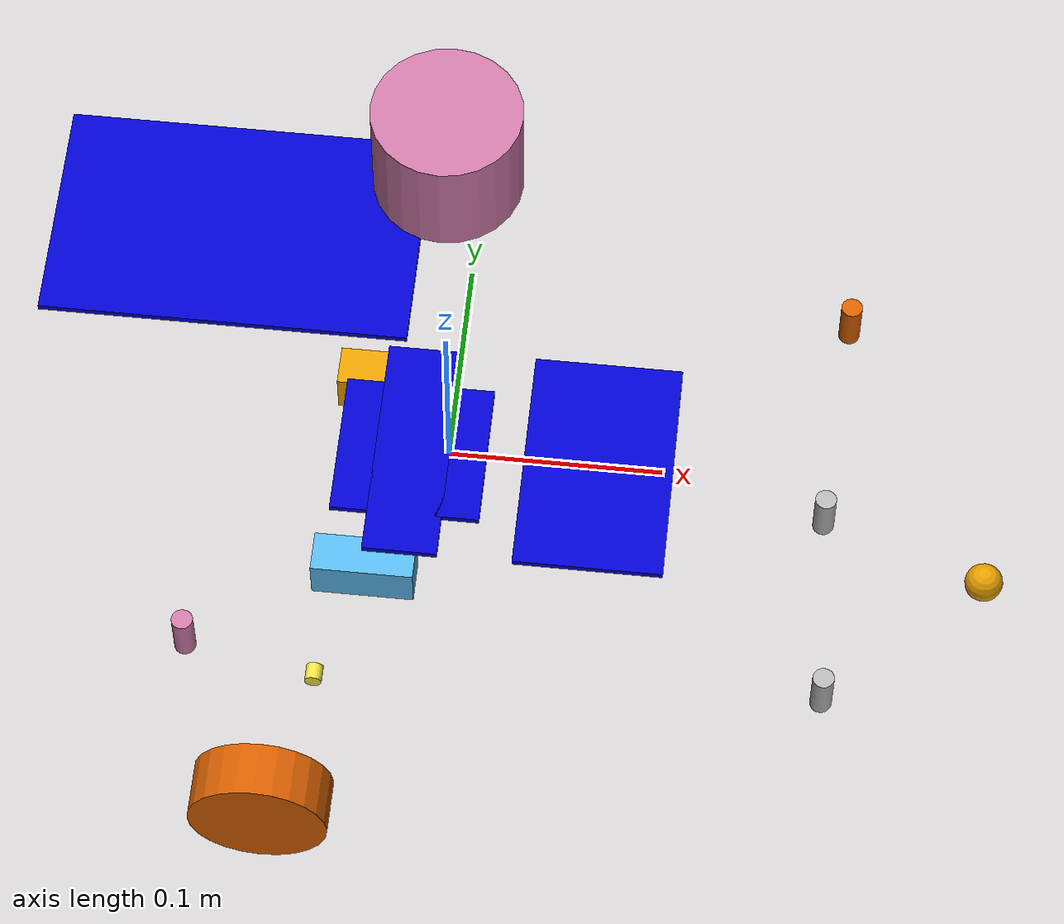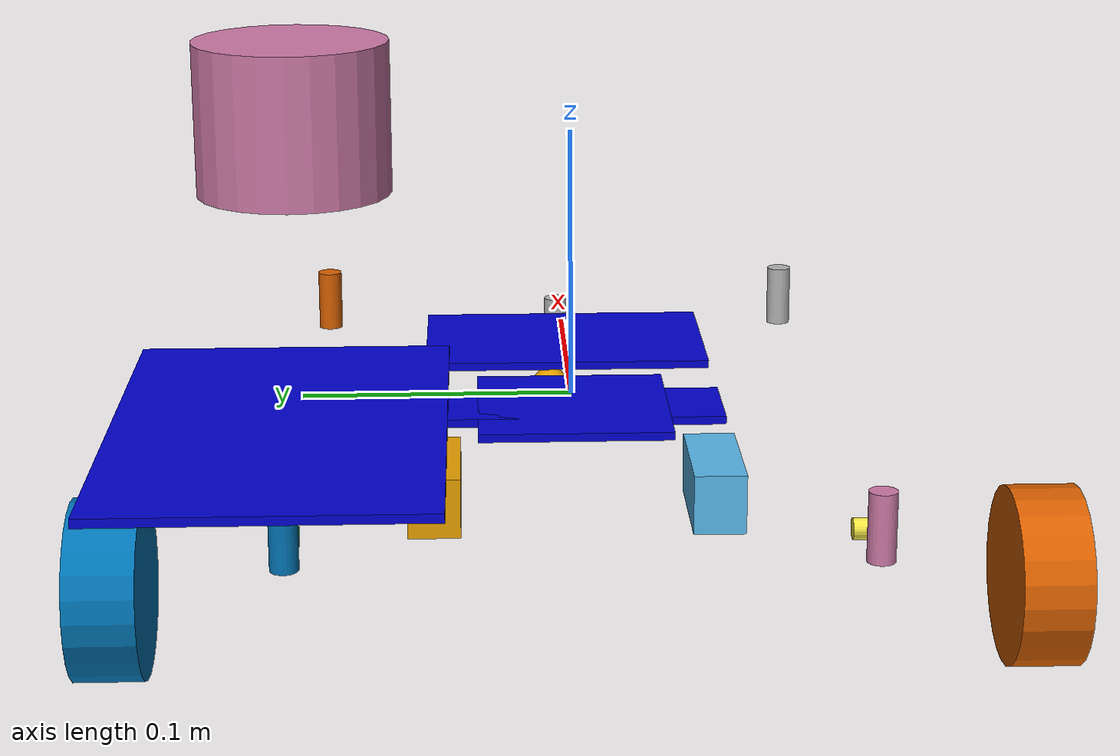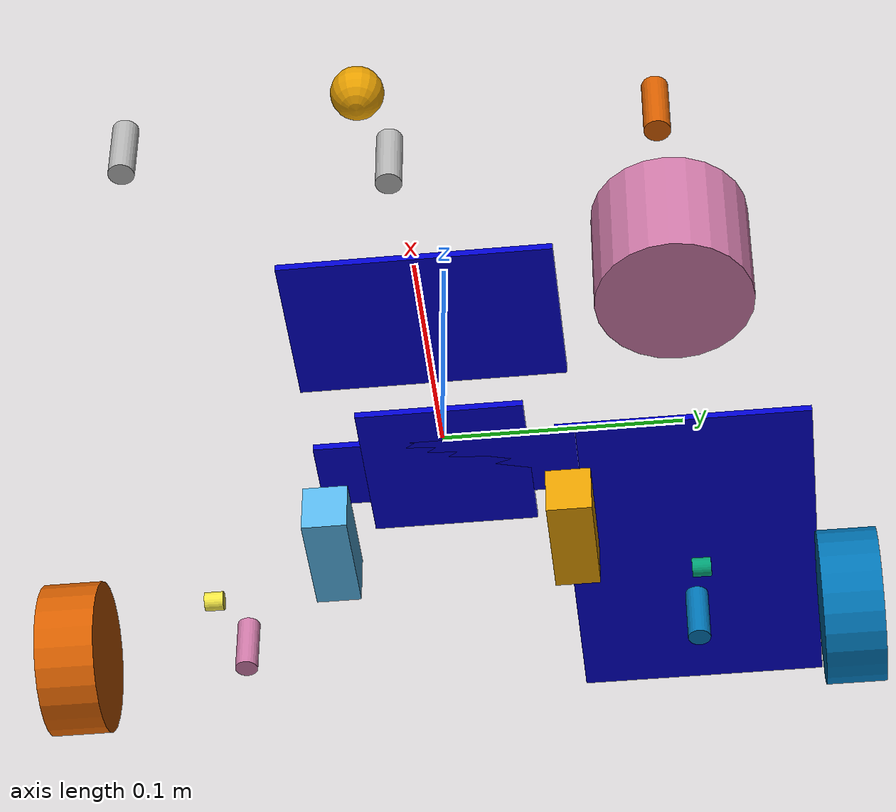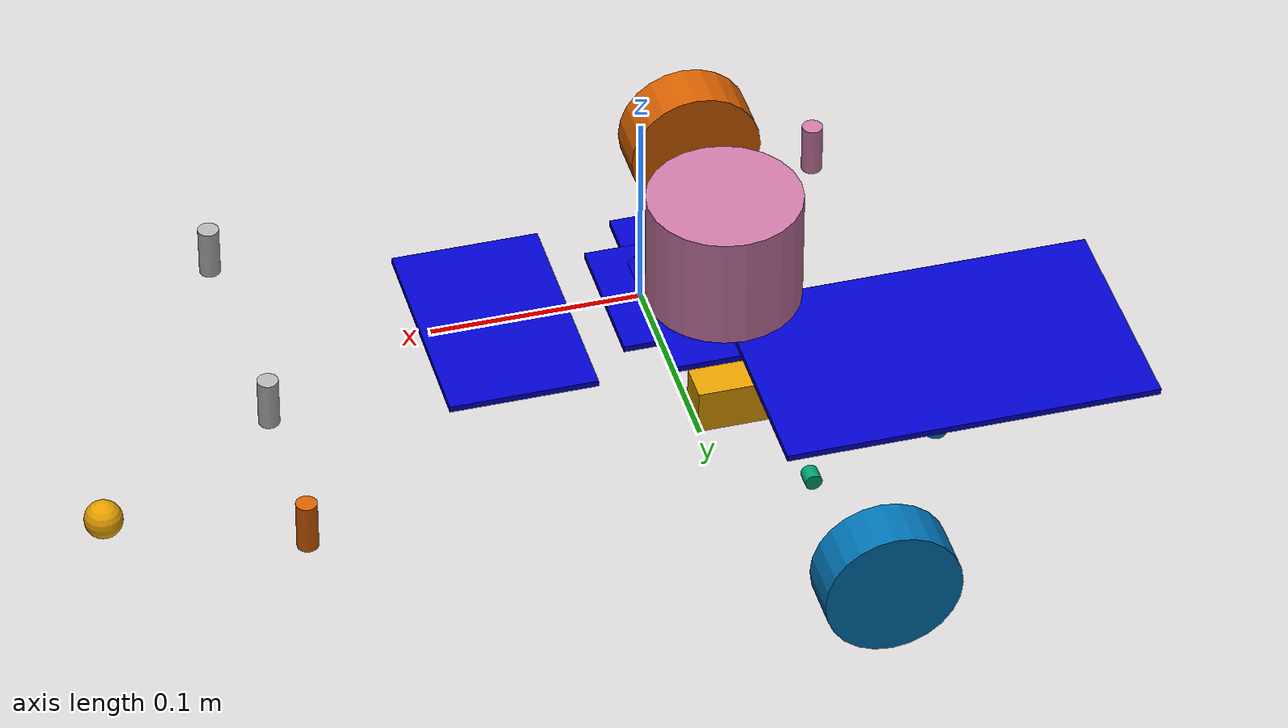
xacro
<?xml version="1.0"?>
<robot name="robot">
<material name="blue">
    <color rgba="0 0 0.8 1"/>
  </material>

  <material name="white">
    <color rgba="1 1 1 1"/>
  </material>

  <link name="bottom3">
    <visual>
      <geometry>
        <box size="0.07 0.110 0.003"/>
      </geometry>
      <material name="blue"/>
      <origin rpy="0 0 0" xyz="0.0525 0 0"/>
    </visual>
     <collision>
      <geometry>
        <box size="0.08 0.120 0.003"/>
      </geometry>
    </collision>
  </link>

  <joint name="bottom3 to base_link" type="fixed">
    <parent link="base_link"/>
    <child link="bottom3"/>
    <origin xyz="0.0175 0 0"/>
  </joint>

<link name="base_link">
    <visual>
      <geometry>
        <box size="0.07 0.07 0.003"/>
      </geometry>
      <material name="blue"/>
      <origin rpy="0 0 0" xyz="-0.0175 0 0"/>
    </visual>
     <collision>
      <geometry>
        <box size="0.08 0.07 0.003"/>
      </geometry>
    </collision>
  </link>

<link name="bottom1">
    <visual>
      <geometry>
        <box size="0.035 0.110 0.003"/>
      </geometry>
      <material name="blue"/>
      <origin rpy="0 0 0" xyz="-0.07 0 0"/>
    </visual>
    <collision>
      <geometry>
        <box size="0.045 0.120 0.003"/>
      </geometry>
    </collision>
  </link>

  <joint name="bottom1 to base_link" type="fixed">
    <parent link="base_link"/>
    <child link="bottom1"/>
    <origin xyz="0.0525 0 0"/>
  </joint>

  <link name="top">
    <visual>
      <geometry>
        <box size="0.175 0.110 0.003"/>
      </geometry>
      <material name="blue"/>
      <origin rpy="0 0 0" xyz="0 0 0.025"/>
    </visual>
  </link>

  <joint name="top joint" type="fixed">
    <parent link="pillar1"/>
    <child link="top"/>
    <origin xyz="-0.0825 0.05 0.025"/>
  </joint>

  <link name="pillar1">
    <visual>
      <geometry>
        <cylinder length="0.025" radius="0.005"/>
      </geometry>
      <origin rpy="0 0 0" xyz="-0.0825 0.05 0.0125"/>
    </visual>
  </link>

  <joint name="pillar1 joint" type="fixed">
    <parent link="bottom1"/>
    <child link="pillar1"/>
    <origin xyz="-0.0825 0.05 -0.025"/>
  </joint>

    <link name="pillar2">
    <visual>
      <geometry>
        <cylinder length="0.025" radius="0.005"/>
      </geometry>
      <origin rpy="0 0 0" xyz="0.0825 0.05 0.0125"/>
    </visual>
  </link>

  <joint name="pillar2 joint" type="fixed">
    <parent link="bottom3"/>
    <child link="pillar2"/>
    <origin xyz="0.0825 0.05 -0.025"/>
  </joint>

    <link name="pillar3">
    <visual>
      <geometry>
        <cylinder length="0.025" radius="0.005"/>
      </geometry>
      <origin rpy="0 0 0" xyz="-0.0825 -0.05 0.0125"/>
    </visual>
  </link>

  <joint name="pillar3 joint" type="fixed">
    <parent link="bottom1"/>
    <child link="pillar3"/>
    <origin xyz="-0.0825 -0.05 -0.025"/>
  </joint>

    <link name="pillar4">
    <visual>
      <geometry>
        <cylinder length="0.025" radius="0.005"/>
      </geometry>
      <origin rpy="0 0 0" xyz="0.0825 -0.05 0.0125"/>
    </visual>
  </link>

  <joint name="pillar4 joint" type="fixed">
    <parent link="bottom3"/>
    <child link="pillar4"/>
    <origin xyz="0.0825 -0.05 -0.025"/>
  </joint>

   <link name="right motor">
    <visual>
      <geometry>
        <box size="0.048 0.019 0.022"/>
      </geometry>
      <origin rpy="0 0 0" xyz="-0.0175 0.0255 -0.012"/>
    </visual>
  </link>

   <joint name="right motor joint" type="fixed">
    <parent link="base_link"/>
    <child link="right motor"/>
    <origin xyz="-0.0175 0.0255 -0.012"/>
  </joint>

     <link name="left motor">
    <visual>
      <geometry>
        <box size="0.048 0.019 0.022"/>
      </geometry>
      <origin rpy="0 0 0" xyz="-0.0175 -0.0255 -0.012"/>
    </visual>
  </link>

   <joint name="left motor joint" type="fixed">
    <parent link="base_link"/>
    <child link="left motor"/>
    <origin xyz="-0.0175 -0.0255 -0.012"/>
  </joint>

    <link name="right shaft">
    <visual>
      <geometry>
        <cylinder length="0.008" radius="0.004"/>
      </geometry>
      <origin rpy="1.57079 0 0" xyz="-0.0175 0.039 -0.012"/>
    </visual>
  </link>

   <joint name="right shaft joint" type="fixed">
    <parent link="right motor"/>
    <child link="right shaft"/>
    <origin xyz="-0.0175 0.039 -0.012"/>
  </joint>

    <link name="left shaft">
    <visual>
      <geometry>
        <cylinder length="0.008" radius="0.004"/>
      </geometry>
      <origin rpy="-1.57079 0 0" xyz="-0.0175 -0.039 -0.012"/>
    </visual>
  </link>

   <joint name="left shaft joint" type="fixed">
    <parent link="left motor"/>
    <child link="left shaft"/>
    <origin xyz="-0.0175 -0.039 -0.012"/>
  </joint>

    <link name="right wheel">
    <visual>
      <geometry>
        <cylinder length="0.025" radius="0.0325"/>
      </geometry>
            <origin rpy="1.57079 0 0" xyz="-0.0175 0.05 -0.012"/>
    </visual>
  </link>

    <joint name="right_wheel_joint" type="continuous">
    <parent link="right shaft"/>
    <child link="right wheel"/>
    <axis xyz="1 0 0"/>
    <origin xyz="-0.0175 0.05 -0.012"/>
  </joint>

      <link name="left wheel">
    <visual>
      <geometry>
        <cylinder length="0.025" radius="0.0325"/>
      </geometry>
            <origin rpy="1.57079 0 0" xyz="-0.0175 -0.05 -0.012"/>
    </visual>
  </link>

    <joint name="left_wheel_joint" type="continuous">
    <parent link="left shaft"/>
    <child link="left wheel"/>
    <axis xyz="1 0 0"/>
    <origin xyz="-0.0175 -0.05 -0.012"/>
  </joint>

  <link name="lidar">
    <visual>
      <geometry>
        <cylinder length="0.055" radius="0.03515"/>
      </geometry>
      <origin rpy="0 0 0" xyz="0.051 0 0.054"/>
    </visual>
  </link>

    <joint name="lidar joint" type="fixed">
    <parent link="top"/>
    <child link="lidar"/>
    <origin xyz="0.051 0 0.054"/>
  </joint>

  <link name="ball pillar">
    <visual>
      <geometry>
        <cylinder length="0.025" radius="0.005"/>
      </geometry>
      <origin rpy="0 0 0" xyz="0.08 0 -0.012"/>
    </visual>
  </link>

  <joint name="ball pillar joint" type="fixed">
    <parent link="bottom3"/>
    <child link="ball pillar"/>
    <origin xyz="0.08 0 -0.012"/>
  </joint>

  <link name="ball">
    <visual>
      <geometry>
        <sphere radius="0.00925"/>
      </geometry>
      <origin rpy="0 0 0" xyz="0.08 0 -0.033"/>
    </visual>
  </link>

  <joint name="ball joint" type="fixed">
    <parent link="ball pillar"/>
    <child link="ball"/>
    <origin xyz="0.08 0 -0.033"/>
  </joint>

</robot>
